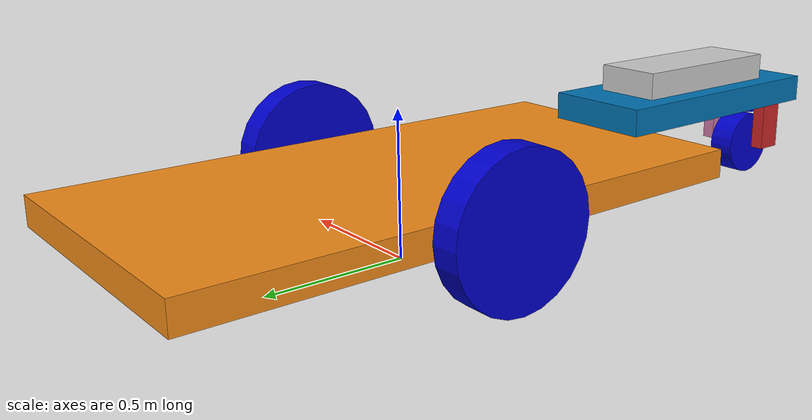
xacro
<?xml version="1.0"?>
<robot name="rostricycle" xmlns:xacro="http://www.ros.org/wiki/xacro">

<!-- define constants -->
<xacro:property name="PI" value="3.1415926" />
<xacro:property name="mass" value="5" />
<xacro:property name="wheel_mass" value="1.5" />
<xacro:property name="width" value="1" />
<xacro:property name="height" value="2" />
<xacro:property name="thickness" value="0.1" />
<xacro:property name="wheel_thickness" value="0.1" />
<xacro:property name="wheel_radius" value="0.25" />
<xacro:property name="stick_width" value="${(wheel_thickness)*4}" />
<xacro:property name="stick_height" value="${(wheel_radius)*4}" />
<xacro:property name="stick_thickness" value="${thickness}" />
<xacro:property name="steer_radius" value="${(stick_width - thickness*2)/2}" />
<xacro:property name="steer_thickness" value="${thickness/2}" />
<xacro:property name="ear_width" value="${steer_radius}" />
<xacro:property name="ear_height" value="${steer_radius*2}" />
<xacro:property name="ear_thickness" value="${thickness/2}" />

<!-- define macros -->
<xacro:macro name="box_inertia_matrix_" params="m w h d">
  <inertial>
    <mass value="${m}"/>
    <inertia ixx="${m / 12.0 * (d*d + h*h)}" ixy="0.0" ixz="0.0"
             iyy="${m / 12.0 * (w*w + h*h)}" iyz="0.0"
             izz="${m / 12.0 * (w*w + d*d)}"/>
  </inertial>
</xacro:macro>

<xacro:macro name="sphere_inertial_matrix_" params="m r">
  <inertial>
    <mass value="${m}" />
    <inertia ixx="${2*m*r*r/5}" ixy="0" ixz="0"
             iyy="${2*m*r*r/5}" iyz="0"
             izz="${2*m*r*r/5}" />
    </inertial>
</xacro:macro>

<xacro:macro name="cylinder_inertial_matrix_" params="m r h">
  <inertial>
    <mass value="${m}" />
    <inertia ixx="${m*(3*r*r+h*h)/12}" ixy = "0" ixz = "0"
             iyy="${m*(3*r*r+h*h)/12}" iyz = "0"
             izz="${m*r*r/2}" />
  </inertial>
</xacro:macro>

<xacro:macro name="wheel_" params="prefix reflect">
<link name="${prefix}_wheel_link">
  <visual>
    <geometry>
      <cylinder length="${wheel_thickness}" radius="${wheel_radius}" />
    </geometry>
    <origin xyz="0 0 0" rpy="0 ${PI/2} 0" />
    <material name="blue">
      <color rgba="0 0 .8 1"/>
    </material>
  </visual>
  <collision>
    <geometry>
      <cylinder length="${wheel_thickness}" radius="${wheel_radius}" />
    </geometry>
    <origin xyz="0 0 0" rpy="0 ${PI/2} 0" />
  </collision>
  <cylinder_inertial_matrix_  m="${wheel_mass}" r="${wheel_radius}" h="${wheel_thickness}" />
</link>
<gazebo reference="${prefix}_wheel_link">
  <material>Gazebo/Blue</material>
</gazebo>
<joint name="${prefix}_wheel_joint" type="continuous">
  <parent link="base_link" />
  <child link="${prefix}_wheel_link" />
  <origin xyz="${(width/2 + wheel_thickness/2)*reflect} 0 0" rpy="0 0 0" />
  <axis xyz="1 0 0" />
</joint>
</xacro:macro>

<xacro:macro name="ear_" params="prefix reflect">
<link name="${prefix}_ear_link">
  <visual>
    <geometry>
      <box size="${ear_width} ${ear_height} ${ear_thickness}" />
    </geometry>
    <origin xyz="0 0 0" rpy="${PI/2} 0 ${PI/2}" />
  </visual>
  <collision>
    <geometry>
      <box size="${ear_width} ${ear_height} ${ear_thickness}" />
    </geometry>
    <origin xyz="0 0 0" rpy="${PI/2} 0 ${PI/2}" />
  </collision>
  <box_inertia_matrix_  m="${mass*0.1}" w="${ear_width}" h="${ear_height}" d="${ear_thickness}"/>
</link>
<joint name="${prefix}_ear_joint" type="fixed">
  <parent link="front_steering_link" />
  <child link="${prefix}_ear_link" />
  <origin xyz="${(steer_radius + ear_thickness/2)*reflect} 0 ${-ear_height/2 + steer_thickness/2}" rpy="0 0 0" />
  <axis xyz="1 0 0" />
</joint>
</xacro:macro>

<!-- define links -->

<!-- base foot print -->
<link name="base_footprint">
  <visual>
    <origin xyz="0 0 0" rpy="0 0 0" />
    <geometry>
      <box size="0.001 0.001 0.001" />
    </geometry>
  </visual>
  <box_inertia_matrix_ m="${mass*2}" w="0.001" h="0.001" d="0.001" />
</link>

<gazebo reference="base_footprint">
  <turnGravityOff>false</turnGravityOff>
</gazebo>

<!-- Base Link-->
<link name="base_link">
  <collision>
    <geometry>
      <box size="${width} ${height} ${thickness}" />
    </geometry>
  </collision>
  <visual>
    <geometry>
      <box size="${width} ${height} ${thickness}" />
    </geometry>
  </visual>
  <box_inertia_matrix_ m="${mass}" w="${width}" h="${height}" d="${thickness}" />
</link>

<joint name="base_link_joint" type="fixed">
  <origin xyz="0 0 ${wheel_radius}" rpy="0 0 0" />
  <parent link="base_footprint"/>
  <child link="base_link" />
</joint>

<gazebo reference="base_link">
  <material>Gazebo/Orange</material>
</gazebo>

<!-- Left Wheel Link -->
<wheel_ prefix="left" reflect="-1" />

<!-- Right Wheel Link -->
<wheel_ prefix="right" reflect="1" />

<!-- stick -->
<link name="stick_link">
  <collision>
    <geometry>
      <box size="${stick_width} ${stick_height} ${stick_thickness}" />
    </geometry>
  </collision>
  <visual>
    <geometry>
      <box size="${stick_width} ${stick_height} ${stick_thickness}" />
    </geometry>
  </visual>
  <box_inertia_matrix_ m="${mass/10}" w="${stick_width}" h="${stick_height}" d="${stick_thickness}" />
</link>

<joint name="stick_link_joint" type="fixed">
  <origin xyz="0 ${-height/2 - stick_height/2 + thickness} ${thickness}" rpy="0 0 0" />
  <parent link="base_link"/>
  <child link="stick_link" />
</joint>

<!--  left ear -->
<ear_ prefix="left" reflect="-1" />
<gazebo reference="left_ear_link">
  <material>Gazebo/Red</material>
</gazebo>

<!--  right ear -->
<ear_ prefix="right" reflect="1" />

<!-- front steer -->
<link name="front_steering_link">
  <visual>
    <geometry>
      <cylinder length="${steer_thickness}" radius="${steer_radius}" />
    </geometry>
    <origin xyz="0 0 0" rpy="0 0 0" />
    <material name="blue">
      <color rgba="0 0 .8 1"/>
    </material>
  </visual>
  <collision>
    <geometry>
      <cylinder length="${steer_thickness}" radius="${steer_radius}" />
    </geometry>
    <origin xyz="0 0 0" rpy="0 0 0" />
  </collision>
  <cylinder_inertial_matrix_  m="${wheel_mass/2}" r="${steer_radius}" h="${steer_thickness}" />
</link>
<joint name="front_steering_joint" type="continuous">
  <parent link="stick_link" />
  <child link="front_steering_link" />
  <origin xyz="0 ${-stick_height/2 + steer_radius} ${-stick_thickness/2 - steer_thickness/2}" rpy="0 0 0" />
  <axis xyz="0 0 1" />
</joint>
<transmission name="front_steering_tran">
  <type>transmission_interface/SimpleTransmission</type>
  <joint name="front_steering_joint">
    <hardwareInterface>hardware_interface/PositionJointInterface</hardwareInterface>
  </joint>
  <actuator name="front_steering_motor">
    <hardwareInterface>hardware_interface/PositionJointInterface</hardwareInterface>
    <mechanicalReduction>1</mechanicalReduction>
  </actuator>
</transmission>

<!-- front wheel -->
<link name="front_wheel_link">
  <visual>
    <geometry>
      <cylinder length="${wheel_thickness}" radius="${wheel_radius/2}" />
    </geometry>
    <origin xyz="0 0 0" rpy="0 ${PI/2} 0" />
    <material name="blue">
      <color rgba="0 0 .8 1"/>
    </material>
  </visual>
  <collision>
    <geometry>
      <cylinder length="${wheel_thickness}" radius="${wheel_radius/2}" />
    </geometry>
    <origin xyz="0 0 0" rpy="0 ${PI/2} 0" />
  </collision>
  <cylinder_inertial_matrix_  m="${wheel_mass/4}" r="${wheel_radius/2}" h="${wheel_thickness}" />
</link>
<gazebo reference="front_wheel_link">
  <material>Gazebo/Yellow</material>
</gazebo>
<joint name="front_wheel_joint" type="continuous">
  <parent link="front_steering_link" />
  <child link="front_wheel_link" />
  <origin xyz="0 0 ${-wheel_radius/2 - steer_thickness/2 - steer_thickness/2}" rpy="0 0 0" />
  <axis xyz="1 0 0" />
</joint>
<transmission name="front_wheel_tran">
  <type>transmission_interface/SimpleTransmission</type>
  <joint name="front_wheel_joint">
    <hardwareInterface>hardware_interface/VelocityJointInterface</hardwareInterface>
  </joint>
  <actuator name="front_wheel_motor">
    <hardwareInterface>hardware_interface/VelocityJointInterface</hardwareInterface>
    <mechanicalReduction>1</mechanicalReduction>
  </actuator>
</transmission>

<!-- front_wheel_mark -->
<link name="front_wheel_mark_link">
  <visual>
    <geometry>
      <cylinder length="0.01" radius="0.01" />
    </geometry>
    <origin xyz="0 0 0" rpy="0 ${PI/2} 0" />
    <material name="white">
      <color rgba=".8 .8 .8 1"/>
    </material>
  </visual>
  <collision>
    <geometry>
      <cylinder length="0.01" radius="0.01" />
    </geometry>
    <origin xyz="0 0 0" rpy="0 ${PI/2} 0" />
  </collision>
</link>
<joint name="front_wheel_mark_joint" type="fixed">
  <parent link="front_wheel_link" />
  <child link="front_wheel_mark_link" />
  <origin xyz="${wheel_thickness/2+0.005} 0  ${wheel_radius/2-0.01}" rpy="0 0 0" />
  <axis xyz="1 0 0" />
</joint>

<!-- fork -->
<link name="fork_link">
  <visual>
    <geometry>
      <box size="${width/4} ${height/3} ${thickness}" />
    </geometry>
    <origin xyz="0 0 0" rpy="0 0 0" />
    <material name="white">
      <color rgba="0.8 0.8 0.8 1"/>
    </material>
  </visual>
  <collision>
    <geometry>
      <box size="${width/4} ${height/3} ${thickness}" />
    </geometry>
    <origin xyz="0 0 0" rpy="0 0 0" />
  </collision>
  <box_inertia_matrix_  m="${mass*0.1}" w="${width/4}" h="${height/3}" d="${thickness}"/>
</link>
<joint name="fork_joint" type="prismatic">
  <parent link="stick_link" />
  <child link="fork_link" />
  <limit effort="100.0" velocity="0.1" lower="0.0" upper="2.0"/>
  <origin xyz=" 0 0 ${thickness}" rpy="0 0 0" />
  <axis xyz="0 0 1" />
</joint>

<transmission name="fork_joint_trans">
    <type>transmission_interface/SimpleTransmission</type>
    <joint name="fork_joint">
      <hardwareInterface>hardware_interface/VelocityJointInterface</hardwareInterface>
    </joint>
    <actuator name="fork_actuator">
      <hardwareInterface>hardware_interface/VelocityJointInterface</hardwareInterface>
      <mechanicalReduction>1</mechanicalReduction>
    </actuator>
</transmission>

<!-- gazebo controller plugin: ref: http://gazebosim.org/tutorials/?tut=ros_control-->
<!-- ref: http://www.theconstructsim.com/ros-qa-126-how-to-configure-the-differential-drive-ros-controller/-->
<gazebo>
  <plugin name="gazebo_ros_control" filename="libgazebo_ros_control.so">
    <robotSimType>gazebo_ros_control/DefaultRobotHWSim</robotSimType>
    <legacyModeNS>true</legacyModeNS>
  </plugin>
</gazebo>

</robot>
